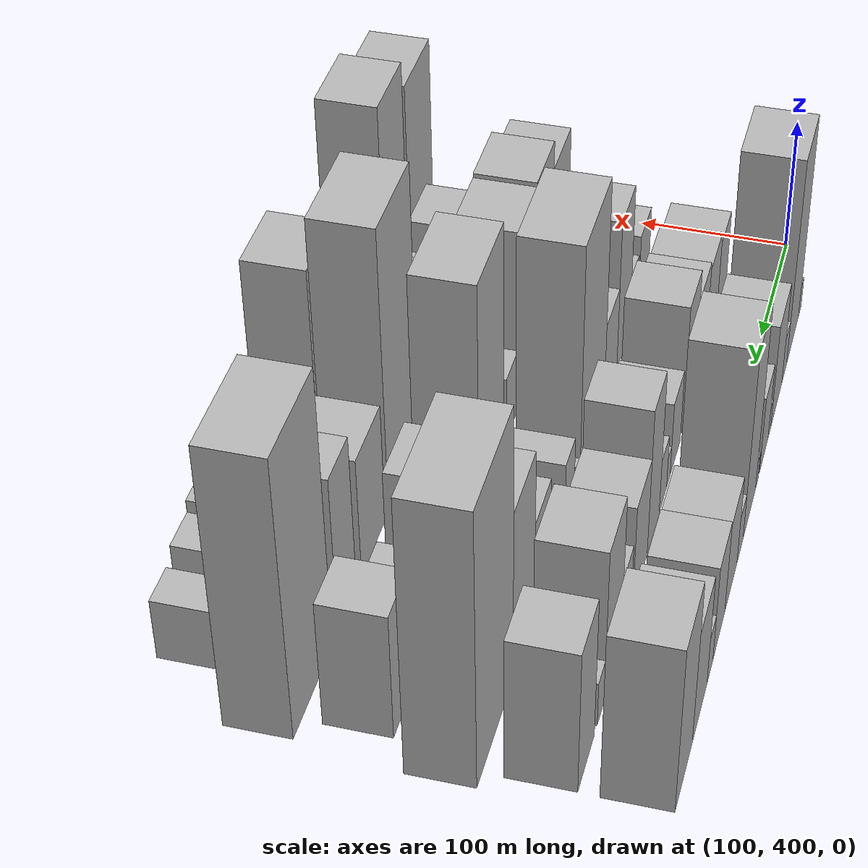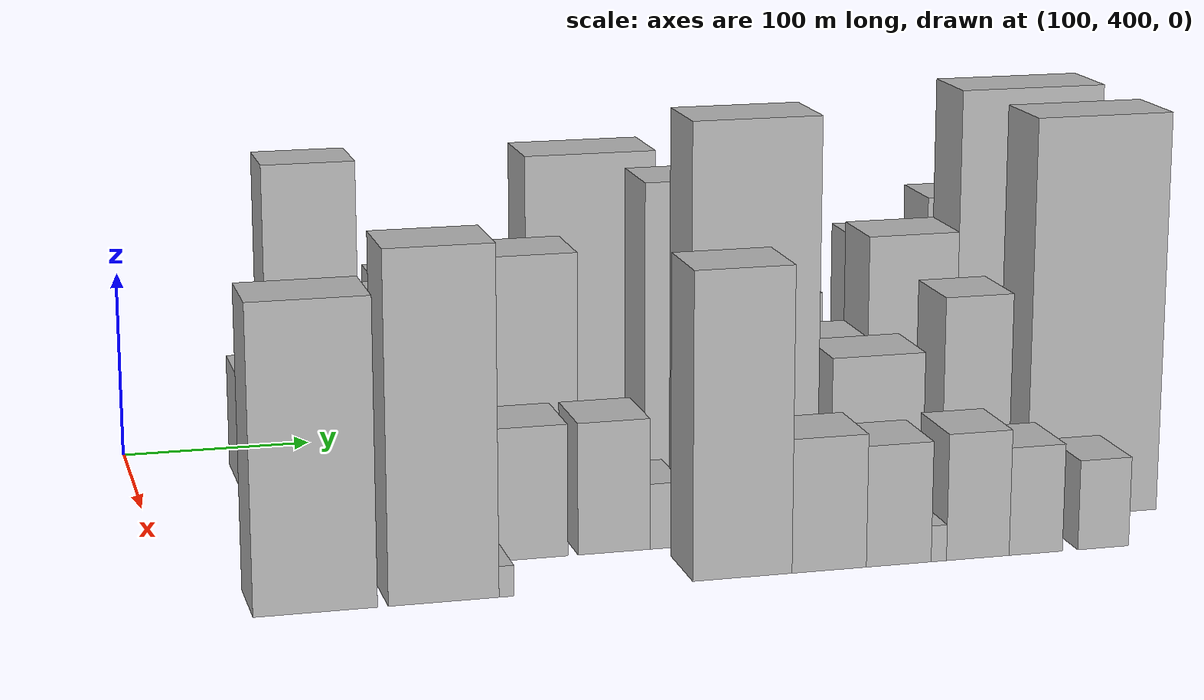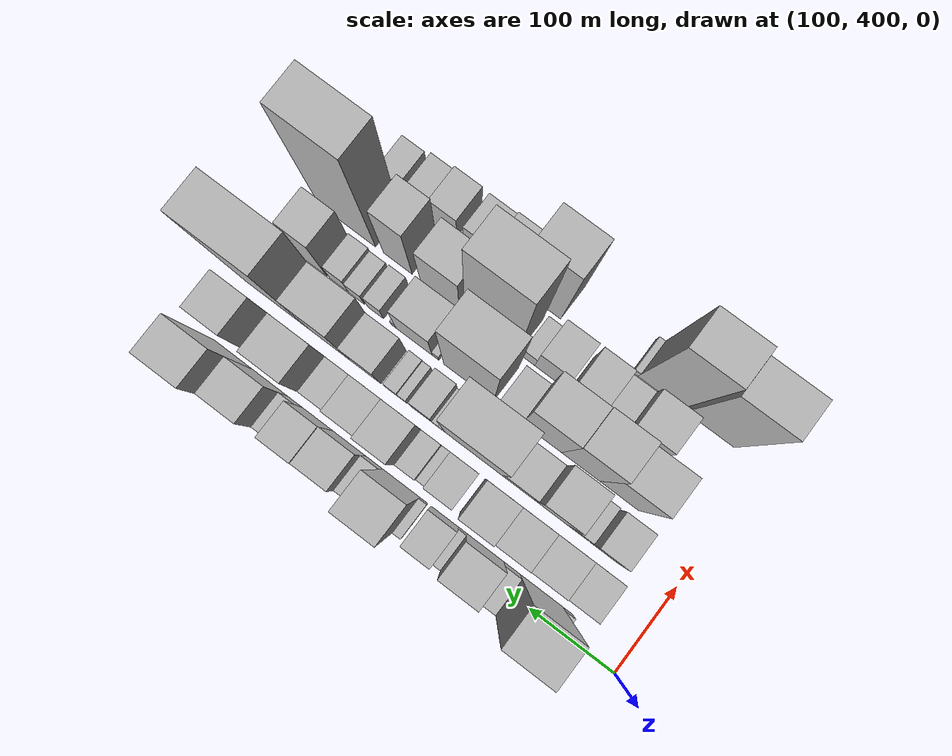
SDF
<sdf version="1.6">
 <world name="default">
  <model name="building_42">
   <static>1</static>
   <pose>100.0000 469.5153 0 0.000000 0.000000 0.000000</pose>
   <link name="link">
    <pose>0 0 12.00 0 0 0</pose>
    <collision name="collision"><geometry><box><size>40.0000 11.7466 24.0000</size></box></geometry></collision>
    <visual name="visual">
     <cast_shadows>0</cast_shadows>
     <geometry><box><size>40.0000 11.7466 24.0000</size></box></geometry>
     <material>
      <script>
       <uri>model://HANNAS_wall/materials/scripts</uri>
       <uri>model://HANNAS_wall/materials/textures</uri>
       <name>vrc/HANNAS_wall</name>
      </script>
     </material>
    </visual>
   </link>
  </model>
  <model name="building_43">
   <static>1</static>
   <pose>100.0000 500.5316 0 0.000000 0.000000 0.000000</pose>
   <link name="link">
    <pose>0 0 79.50 0 0 0</pose>
    <collision name="collision"><geometry><box><size>40.0000 50.2860 159.0000</size></box></geometry></collision>
    <visual name="visual">
     <cast_shadows>0</cast_shadows>
     <geometry><box><size>40.0000 50.2860 159.0000</size></box></geometry>
     <material>
      <script>
       <uri>model://HANNAS_wall/materials/scripts</uri>
       <uri>model://HANNAS_wall/materials/textures</uri>
       <name>vrc/HANNAS_wall</name>
      </script>
     </material>
    </visual>
   </link>
  </model>
  <model name="building_44">
   <static>1</static>
   <pose>100.0000 535.3642 0 0.000000 0.000000 0.000000</pose>
   <link name="link">
    <pose>0 0 18.00 0 0 0</pose>
    <collision name="collision"><geometry><box><size>40.0000 19.3794 36.0000</size></box></geometry></collision>
    <visual name="visual">
     <cast_shadows>0</cast_shadows>
     <geometry><box><size>40.0000 19.3794 36.0000</size></box></geometry>
     <material>
      <script>
       <uri>model://HANNAS_wall/materials/scripts</uri>
       <uri>model://HANNAS_wall/materials/textures</uri>
       <name>vrc/HANNAS_wall</name>
      </script>
     </material>
    </visual>
   </link>
  </model>
  <model name="building_45">
   <static>1</static>
   <pose>100.0000 566.8568 0 0.000000 0.000000 0.000000</pose>
   <link name="link">
    <pose>0 0 40.50 0 0 0</pose>
    <collision name="collision"><geometry><box><size>40.0000 43.6056 81.0000</size></box></geometry></collision>
    <visual name="visual">
     <cast_shadows>0</cast_shadows>
     <geometry><box><size>40.0000 43.6056 81.0000</size></box></geometry>
     <material>
      <script>
       <uri>model://HANNAS_wall/materials/scripts</uri>
       <uri>model://HANNAS_wall/materials/textures</uri>
       <name>vrc/HANNAS_wall</name>
      </script>
     </material>
    </visual>
   </link>
  </model>
  <model name="building_46">
   <static>1</static>
   <pose>100.0000 593.5620 0 0.000000 0.000000 0.000000</pose>
   <link name="link">
    <pose>0 0 12.00 0 0 0</pose>
    <collision name="collision"><geometry><box><size>40.0000 9.8050 24.0000</size></box></geometry></collision>
    <visual name="visual">
     <cast_shadows>0</cast_shadows>
     <geometry><box><size>40.0000 9.8050 24.0000</size></box></geometry>
     <material>
      <script>
       <uri>model://HANNAS_wall/materials/scripts</uri>
       <uri>model://HANNAS_wall/materials/textures</uri>
       <name>vrc/HANNAS_wall</name>
      </script>
     </material>
    </visual>
   </link>
  </model>
  <model name="building_47">
   <static>1</static>
   <pose>100.0000 614.7709 0 0.000000 0.000000 0.000000</pose>
   <link name="link">
    <pose>0 0 30.00 0 0 0</pose>
    <collision name="collision"><geometry><box><size>40.0000 32.6127 60.0000</size></box></geometry></collision>
    <visual name="visual">
     <cast_shadows>0</cast_shadows>
     <geometry><box><size>40.0000 32.6127 60.0000</size></box></geometry>
     <material>
      <script>
       <uri>model://HANNAS_wall/materials/scripts</uri>
       <uri>model://HANNAS_wall/materials/textures</uri>
       <name>vrc/HANNAS_wall</name>
      </script>
     </material>
    </visual>
   </link>
  </model>
  <model name="building_48">
   <static>1</static>
   <pose>100.0000 639.8598 0 0.000000 0.000000 0.000000</pose>
   <link name="link">
    <pose>0 0 10.50 0 0 0</pose>
    <collision name="collision"><geometry><box><size>40.0000 9.5650 21.0000</size></box></geometry></collision>
    <visual name="visual">
     <cast_shadows>0</cast_shadows>
     <geometry><box><size>40.0000 9.5650 21.0000</size></box></geometry>
     <material>
      <script>
       <uri>model://HANNAS_wall/materials/scripts</uri>
       <uri>model://HANNAS_wall/materials/textures</uri>
       <name>vrc/HANNAS_wall</name>
      </script>
     </material>
    </visual>
   </link>
  </model>
  <model name="building_49">
   <static>1</static>
   <pose>100.0000 666.8647 0 0.000000 0.000000 0.000000</pose>
   <link name="link">
    <pose>0 0 72.00 0 0 0</pose>
    <collision name="collision"><geometry><box><size>40.0000 44.4448 144.0000</size></box></geometry></collision>
    <visual name="visual">
     <cast_shadows>0</cast_shadows>
     <geometry><box><size>40.0000 44.4448 144.0000</size></box></geometry>
     <material>
      <script>
       <uri>model://HANNAS_wall/materials/scripts</uri>
       <uri>model://HANNAS_wall/materials/textures</uri>
       <name>vrc/HANNAS_wall</name>
      </script>
     </material>
    </visual>
   </link>
  </model>
  <model name="building_50">
   <static>1</static>
   <pose>100.0000 699.5943 0 0.000000 0.000000 0.000000</pose>
   <link name="link">
    <pose>0 0 18.00 0 0 0</pose>
    <collision name="collision"><geometry><box><size>40.0000 21.0145 36.0000</size></box></geometry></collision>
    <visual name="visual">
     <cast_shadows>0</cast_shadows>
     <geometry><box><size>40.0000 21.0145 36.0000</size></box></geometry>
     <material>
      <script>
       <uri>model://HANNAS_wall/materials/scripts</uri>
       <uri>model://HANNAS_wall/materials/textures</uri>
       <name>vrc/HANNAS_wall</name>
      </script>
     </material>
    </visual>
   </link>
  </model>
  <model name="building_51">
   <static>1</static>
   <pose>100.0000 730.2220 0 0.000000 0.000000 0.000000</pose>
   <link name="link">
    <pose>0 0 34.50 0 0 0</pose>
    <collision name="collision"><geometry><box><size>40.0000 40.2407 69.0000</size></box></geometry></collision>
    <visual name="visual">
     <cast_shadows>0</cast_shadows>
     <geometry><box><size>40.0000 40.2407 69.0000</size></box></geometry>
     <material>
      <script>
       <uri>model://HANNAS_wall/materials/scripts</uri>
       <uri>model://HANNAS_wall/materials/textures</uri>
       <name>vrc/HANNAS_wall</name>
      </script>
     </material>
    </visual>
   </link>
  </model>
  <model name="building_52">
   <static>1</static>
   <pose>100.0000 769.0056 0 0.000000 0.000000 0.000000</pose>
   <link name="link">
    <pose>0 0 36.00 0 0 0</pose>
    <collision name="collision"><geometry><box><size>40.0000 37.3265 72.0000</size></box></geometry></collision>
    <visual name="visual">
     <cast_shadows>0</cast_shadows>
     <geometry><box><size>40.0000 37.3265 72.0000</size></box></geometry>
     <material>
      <script>
       <uri>model://HANNAS_wall/materials/scripts</uri>
       <uri>model://HANNAS_wall/materials/textures</uri>
       <name>vrc/HANNAS_wall</name>
      </script>
     </material>
    </visual>
   </link>
  </model>
  <model name="building_53">
   <static>1</static>
   <pose>100.0000 796.7517 0 0.000000 0.000000 0.000000</pose>
   <link name="link">
    <pose>0 0 18.00 0 0 0</pose>
    <collision name="collision"><geometry><box><size>40.0000 18.1656 36.0000</size></box></geometry></collision>
    <visual name="visual">
     <cast_shadows>0</cast_shadows>
     <geometry><box><size>40.0000 18.1656 36.0000</size></box></geometry>
     <material>
      <script>
       <uri>model://HANNAS_wall/materials/scripts</uri>
       <uri>model://HANNAS_wall/materials/textures</uri>
       <name>vrc/HANNAS_wall</name>
      </script>
     </material>
    </visual>
   </link>
  </model>
  <model name="building_54">
   <static>1</static>
   <pose>100.0000 827.3616 0 0.000000 0.000000 0.000000</pose>
   <link name="link">
    <pose>0 0 42.00 0 0 0</pose>
    <collision name="collision"><geometry><box><size>40.0000 43.0542 84.0000</size></box></geometry></collision>
    <visual name="visual">
     <cast_shadows>0</cast_shadows>
     <geometry><box><size>40.0000 43.0542 84.0000</size></box></geometry>
     <material>
      <script>
       <uri>model://HANNAS_wall/materials/scripts</uri>
       <uri>model://HANNAS_wall/materials/textures</uri>
       <name>vrc/HANNAS_wall</name>
      </script>
     </material>
    </visual>
   </link>
  </model>
  <model name="building_55">
   <static>1</static>
   <pose>100.0000 873.1062 0 0.000000 0.000000 0.000000</pose>
   <link name="link">
    <pose>0 0 61.50 0 0 0</pose>
    <collision name="collision"><geometry><box><size>40.0000 48.4351 123.0000</size></box></geometry></collision>
    <visual name="visual">
     <cast_shadows>0</cast_shadows>
     <geometry><box><size>40.0000 48.4351 123.0000</size></box></geometry>
     <material>
      <script>
       <uri>model://HANNAS_wall/materials/scripts</uri>
       <uri>model://HANNAS_wall/materials/textures</uri>
       <name>vrc/HANNAS_wall</name>
      </script>
     </material>
    </visual>
   </link>
  </model>
  <model name="building_91">
   <static>1</static>
   <pose>152.0000 470.5517 0 0.000000 0.000000 0.000000</pose>
   <link name="link">
    <pose>0 0 30.00 0 0 0</pose>
    <collision name="collision"><geometry><box><size>40.0000 35.4208 60.0000</size></box></geometry></collision>
    <visual name="visual">
     <cast_shadows>0</cast_shadows>
     <geometry><box><size>40.0000 35.4208 60.0000</size></box></geometry>
     <material>
      <script>
       <uri>model://HANNAS_wall/materials/scripts</uri>
       <uri>model://HANNAS_wall/materials/textures</uri>
       <name>vrc/HANNAS_wall</name>
      </script>
     </material>
    </visual>
   </link>
  </model>
  <model name="building_92">
   <static>1</static>
   <pose>152.0000 508.4306 0 0.000000 0.000000 0.000000</pose>
   <link name="link">
    <pose>0 0 34.50 0 0 0</pose>
    <collision name="collision"><geometry><box><size>40.0000 40.3369 69.0000</size></box></geometry></collision>
    <visual name="visual">
     <cast_shadows>0</cast_shadows>
     <geometry><box><size>40.0000 40.3369 69.0000</size></box></geometry>
     <material>
      <script>
       <uri>model://HANNAS_wall/materials/scripts</uri>
       <uri>model://HANNAS_wall/materials/textures</uri>
       <name>vrc/HANNAS_wall</name>
      </script>
     </material>
    </visual>
   </link>
  </model>
  <model name="building_93">
   <static>1</static>
   <pose>152.0000 548.6168 0 0.000000 0.000000 0.000000</pose>
   <link name="link">
    <pose>0 0 37.50 0 0 0</pose>
    <collision name="collision"><geometry><box><size>40.0000 40.0355 75.0000</size></box></geometry></collision>
    <visual name="visual">
     <cast_shadows>0</cast_shadows>
     <geometry><box><size>40.0000 40.0355 75.0000</size></box></geometry>
     <material>
      <script>
       <uri>model://HANNAS_wall/materials/scripts</uri>
       <uri>model://HANNAS_wall/materials/textures</uri>
       <name>vrc/HANNAS_wall</name>
      </script>
     </material>
    </visual>
   </link>
  </model>
  <model name="building_94">
   <static>1</static>
   <pose>152.0000 587.2242 0 0.000000 0.000000 0.000000</pose>
   <link name="link">
    <pose>0 0 49.50 0 0 0</pose>
    <collision name="collision"><geometry><box><size>40.0000 37.1793 99.0000</size></box></geometry></collision>
    <visual name="visual">
     <cast_shadows>0</cast_shadows>
     <geometry><box><size>40.0000 37.1793 99.0000</size></box></geometry>
     <material>
      <script>
       <uri>model://HANNAS_wall/materials/scripts</uri>
       <uri>model://HANNAS_wall/materials/textures</uri>
       <name>vrc/HANNAS_wall</name>
      </script>
     </material>
    </visual>
   </link>
  </model>
  <model name="building_95">
   <static>1</static>
   <pose>152.0000 629.8874 0 0.000000 0.000000 0.000000</pose>
   <link name="link">
    <pose>0 0 28.50 0 0 0</pose>
    <collision name="collision"><geometry><box><size>40.0000 32.1472 57.0000</size></box></geometry></collision>
    <visual name="visual">
     <cast_shadows>0</cast_shadows>
     <geometry><box><size>40.0000 32.1472 57.0000</size></box></geometry>
     <material>
      <script>
       <uri>model://HANNAS_wall/materials/scripts</uri>
       <uri>model://HANNAS_wall/materials/textures</uri>
       <name>vrc/HANNAS_wall</name>
      </script>
     </material>
    </visual>
   </link>
  </model>
  <model name="building_96">
   <static>1</static>
   <pose>152.0000 651.5293 0 0.000000 0.000000 0.000000</pose>
   <link name="link">
    <pose>0 0 12.00 0 0 0</pose>
    <collision name="collision"><geometry><box><size>40.0000 11.1366 24.0000</size></box></geometry></collision>
    <visual name="visual">
     <cast_shadows>0</cast_shadows>
     <geometry><box><size>40.0000 11.1366 24.0000</size></box></geometry>
     <material>
      <script>
       <uri>model://HANNAS_wall/materials/scripts</uri>
       <uri>model://HANNAS_wall/materials/textures</uri>
       <name>vrc/HANNAS_wall</name>
      </script>
     </material>
    </visual>
   </link>
  </model>
  <model name="building_97">
   <static>1</static>
   <pose>152.0000 668.4290 0 0.000000 0.000000 0.000000</pose>
   <link name="link">
    <pose>0 0 21.00 0 0 0</pose>
    <collision name="collision"><geometry><box><size>40.0000 22.6628 42.0000</size></box></geometry></collision>
    <visual name="visual">
     <cast_shadows>0</cast_shadows>
     <geometry><box><size>40.0000 22.6628 42.0000</size></box></geometry>
     <material>
      <script>
       <uri>model://HANNAS_wall/materials/scripts</uri>
       <uri>model://HANNAS_wall/materials/textures</uri>
       <name>vrc/HANNAS_wall</name>
      </script>
     </material>
    </visual>
   </link>
  </model>
  <model name="building_98">
   <static>1</static>
   <pose>152.0000 697.4632 0 0.000000 0.000000 0.000000</pose>
   <link name="link">
    <pose>0 0 55.50 0 0 0</pose>
    <collision name="collision"><geometry><box><size>40.0000 35.4056 111.0000</size></box></geometry></collision>
    <visual name="visual">
     <cast_shadows>0</cast_shadows>
     <geometry><box><size>40.0000 35.4056 111.0000</size></box></geometry>
     <material>
      <script>
       <uri>model://HANNAS_wall/materials/scripts</uri>
       <uri>model://HANNAS_wall/materials/textures</uri>
       <name>vrc/HANNAS_wall</name>
      </script>
     </material>
    </visual>
   </link>
  </model>
  <model name="building_99">
   <static>1</static>
   <pose>152.0000 735.6803 0 0.000000 0.000000 0.000000</pose>
   <link name="link">
    <pose>0 0 37.50 0 0 0</pose>
    <collision name="collision"><geometry><box><size>40.0000 41.0287 75.0000</size></box></geometry></collision>
    <visual name="visual">
     <cast_shadows>0</cast_shadows>
     <geometry><box><size>40.0000 41.0287 75.0000</size></box></geometry>
     <material>
      <script>
       <uri>model://HANNAS_wall/materials/scripts</uri>
       <uri>model://HANNAS_wall/materials/textures</uri>
       <name>vrc/HANNAS_wall</name>
      </script>
     </material>
    </visual>
   </link>
  </model>
  <model name="building_100">
   <static>1</static>
   <pose>152.0000 774.8406 0 0.000000 0.000000 0.000000</pose>
   <link name="link">
    <pose>0 0 25.50 0 0 0</pose>
    <collision name="collision"><geometry><box><size>40.0000 27.2918 51.0000</size></box></geometry></collision>
    <visual name="visual">
     <cast_shadows>0</cast_shadows>
     <geometry><box><size>40.0000 27.2918 51.0000</size></box></geometry>
     <material>
      <script>
       <uri>model://HANNAS_wall/materials/scripts</uri>
       <uri>model://HANNAS_wall/materials/textures</uri>
       <name>vrc/HANNAS_wall</name>
      </script>
     </material>
    </visual>
   </link>
  </model>
  <model name="building_101">
   <static>1</static>
   <pose>152.0000 810.3307 0 0.000000 0.000000 0.000000</pose>
   <link name="link">
    <pose>0 0 57.00 0 0 0</pose>
    <collision name="collision"><geometry><box><size>40.0000 43.6885 114.0000</size></box></geometry></collision>
    <visual name="visual">
     <cast_shadows>0</cast_shadows>
     <geometry><box><size>40.0000 43.6885 114.0000</size></box></geometry>
     <material>
      <script>
       <uri>model://HANNAS_wall/materials/scripts</uri>
       <uri>model://HANNAS_wall/materials/textures</uri>
       <name>vrc/HANNAS_wall</name>
      </script>
     </material>
    </visual>
   </link>
  </model>
  <model name="building_102">
   <static>1</static>
   <pose>152.0000 840.9289 0 0.000000 0.000000 0.000000</pose>
   <link name="link">
    <pose>0 0 16.50 0 0 0</pose>
    <collision name="collision"><geometry><box><size>40.0000 17.5078 33.0000</size></box></geometry></collision>
    <visual name="visual">
     <cast_shadows>0</cast_shadows>
     <geometry><box><size>40.0000 17.5078 33.0000</size></box></geometry>
     <material>
      <script>
       <uri>model://HANNAS_wall/materials/scripts</uri>
       <uri>model://HANNAS_wall/materials/textures</uri>
       <name>vrc/HANNAS_wall</name>
      </script>
     </material>
    </visual>
   </link>
  </model>
  <model name="building_103">
   <static>1</static>
   <pose>152.0000 876.7157 0 0.000000 0.000000 0.000000</pose>
   <link name="link">
    <pose>0 0 52.50 0 0 0</pose>
    <collision name="collision"><geometry><box><size>40.0000 40.0659 105.0000</size></box></geometry></collision>
    <visual name="visual">
     <cast_shadows>0</cast_shadows>
     <geometry><box><size>40.0000 40.0659 105.0000</size></box></geometry>
     <material>
      <script>
       <uri>model://HANNAS_wall/materials/scripts</uri>
       <uri>model://HANNAS_wall/materials/textures</uri>
       <name>vrc/HANNAS_wall</name>
      </script>
     </material>
    </visual>
   </link>
  </model>
  <model name="building_134">
   <static>1</static>
   <pose>204.0000 473.5077 0 0.000000 0.000000 0.000000</pose>
   <link name="link">
    <pose>0 0 28.50 0 0 0</pose>
    <collision name="collision"><geometry><box><size>40.0000 33.0088 57.0000</size></box></geometry></collision>
    <visual name="visual">
     <cast_shadows>0</cast_shadows>
     <geometry><box><size>40.0000 33.0088 57.0000</size></box></geometry>
     <material>
      <script>
       <uri>model://HANNAS_wall/materials/scripts</uri>
       <uri>model://HANNAS_wall/materials/textures</uri>
       <name>vrc/HANNAS_wall</name>
      </script>
     </material>
    </visual>
   </link>
  </model>
  <model name="building_135">
   <static>1</static>
   <pose>204.0000 505.9671 0 0.000000 0.000000 0.000000</pose>
   <link name="link">
    <pose>0 0 22.50 0 0 0</pose>
    <collision name="collision"><geometry><box><size>40.0000 23.9101 45.0000</size></box></geometry></collision>
    <visual name="visual">
     <cast_shadows>0</cast_shadows>
     <geometry><box><size>40.0000 23.9101 45.0000</size></box></geometry>
     <material>
      <script>
       <uri>model://HANNAS_wall/materials/scripts</uri>
       <uri>model://HANNAS_wall/materials/textures</uri>
       <name>vrc/HANNAS_wall</name>
      </script>
     </material>
    </visual>
   </link>
  </model>
  <model name="building_136">
   <static>1</static>
   <pose>204.0000 537.6601 0 0.000000 0.000000 0.000000</pose>
   <link name="link">
    <pose>0 0 58.50 0 0 0</pose>
    <collision name="collision"><geometry><box><size>40.0000 39.4757 117.0000</size></box></geometry></collision>
    <visual name="visual">
     <cast_shadows>0</cast_shadows>
     <geometry><box><size>40.0000 39.4757 117.0000</size></box></geometry>
     <material>
      <script>
       <uri>model://HANNAS_wall/materials/scripts</uri>
       <uri>model://HANNAS_wall/materials/textures</uri>
       <name>vrc/HANNAS_wall</name>
      </script>
     </material>
    </visual>
   </link>
  </model>
  <model name="building_137">
   <static>1</static>
   <pose>204.0000 576.3016 0 0.000000 0.000000 0.000000</pose>
   <link name="link">
    <pose>0 0 33.00 0 0 0</pose>
    <collision name="collision"><geometry><box><size>40.0000 37.8074 66.0000</size></box></geometry></collision>
    <visual name="visual">
     <cast_shadows>0</cast_shadows>
     <geometry><box><size>40.0000 37.8074 66.0000</size></box></geometry>
     <material>
      <script>
       <uri>model://HANNAS_wall/materials/scripts</uri>
       <uri>model://HANNAS_wall/materials/textures</uri>
       <name>vrc/HANNAS_wall</name>
      </script>
     </material>
    </visual>
   </link>
  </model>
  <model name="building_138">
   <static>1</static>
   <pose>204.0000 629.2021 0 0.000000 0.000000 0.000000</pose>
   <link name="link">
    <pose>0 0 88.50 0 0 0</pose>
    <collision name="collision"><geometry><box><size>40.0000 67.9936 177.0000</size></box></geometry></collision>
    <visual name="visual">
     <cast_shadows>0</cast_shadows>
     <geometry><box><size>40.0000 67.9936 177.0000</size></box></geometry>
     <material>
      <script>
       <uri>model://HANNAS_wall/materials/scripts</uri>
       <uri>model://HANNAS_wall/materials/textures</uri>
       <name>vrc/HANNAS_wall</name>
      </script>
     </material>
    </visual>
   </link>
  </model>
  <model name="building_139">
   <static>1</static>
   <pose>204.0000 667.3887 0 0.000000 0.000000 0.000000</pose>
   <link name="link">
    <pose>0 0 9.00 0 0 0</pose>
    <collision name="collision"><geometry><box><size>40.0000 8.3796 18.0000</size></box></geometry></collision>
    <visual name="visual">
     <cast_shadows>0</cast_shadows>
     <geometry><box><size>40.0000 8.3796 18.0000</size></box></geometry>
     <material>
      <script>
       <uri>model://HANNAS_wall/materials/scripts</uri>
       <uri>model://HANNAS_wall/materials/textures</uri>
       <name>vrc/HANNAS_wall</name>
      </script>
     </material>
    </visual>
   </link>
  </model>
  <model name="building_140">
   <static>1</static>
   <pose>204.0000 675.2056 0 0.000000 0.000000 0.000000</pose>
   <link name="link">
    <pose>0 0 7.50 0 0 0</pose>
    <collision name="collision"><geometry><box><size>40.0000 7.2541 15.0000</size></box></geometry></collision>
    <visual name="visual">
     <cast_shadows>0</cast_shadows>
     <geometry><box><size>40.0000 7.2541 15.0000</size></box></geometry>
     <material>
      <script>
       <uri>model://HANNAS_wall/materials/scripts</uri>
       <uri>model://HANNAS_wall/materials/textures</uri>
       <name>vrc/HANNAS_wall</name>
      </script>
     </material>
    </visual>
   </link>
  </model>
  <model name="building_141">
   <static>1</static>
   <pose>204.0000 691.1232 0 0.000000 0.000000 0.000000</pose>
   <link name="link">
    <pose>0 0 24.00 0 0 0</pose>
    <collision name="collision"><geometry><box><size>40.0000 24.5810 48.0000</size></box></geometry></collision>
    <visual name="visual">
     <cast_shadows>0</cast_shadows>
     <geometry><box><size>40.0000 24.5810 48.0000</size></box></geometry>
     <material>
      <script>
       <uri>model://HANNAS_wall/materials/scripts</uri>
       <uri>model://HANNAS_wall/materials/textures</uri>
       <name>vrc/HANNAS_wall</name>
      </script>
     </material>
    </visual>
   </link>
  </model>
  <model name="building_142">
   <static>1</static>
   <pose>204.0000 714.4471 0 0.000000 0.000000 0.000000</pose>
   <link name="link">
    <pose>0 0 12.00 0 0 0</pose>
    <collision name="collision"><geometry><box><size>40.0000 10.0668 24.0000</size></box></geometry></collision>
    <visual name="visual">
     <cast_shadows>0</cast_shadows>
     <geometry><box><size>40.0000 10.0668 24.0000</size></box></geometry>
     <material>
      <script>
       <uri>model://HANNAS_wall/materials/scripts</uri>
       <uri>model://HANNAS_wall/materials/textures</uri>
       <name>vrc/HANNAS_wall</name>
      </script>
     </material>
    </visual>
   </link>
  </model>
  <model name="building_143">
   <static>1</static>
   <pose>204.0000 727.2697 0 0.000000 0.000000 0.000000</pose>
   <link name="link">
    <pose>0 0 15.00 0 0 0</pose>
    <collision name="collision"><geometry><box><size>40.0000 15.5784 30.0000</size></box></geometry></collision>
    <visual name="visual">
     <cast_shadows>0</cast_shadows>
     <geometry><box><size>40.0000 15.5784 30.0000</size></box></geometry>
     <material>
      <script>
       <uri>model://HANNAS_wall/materials/scripts</uri>
       <uri>model://HANNAS_wall/materials/textures</uri>
       <name>vrc/HANNAS_wall</name>
      </script>
     </material>
    </visual>
   </link>
  </model>
  <model name="building_144">
   <static>1</static>
   <pose>204.0000 760.0001 0 0.000000 0.000000 0.000000</pose>
   <link name="link">
    <pose>0 0 36.00 0 0 0</pose>
    <collision name="collision"><geometry><box><size>40.0000 37.8822 72.0000</size></box></geometry></collision>
    <visual name="visual">
     <cast_shadows>0</cast_shadows>
     <geometry><box><size>40.0000 37.8822 72.0000</size></box></geometry>
     <material>
      <script>
       <uri>model://HANNAS_wall/materials/scripts</uri>
       <uri>model://HANNAS_wall/materials/textures</uri>
       <name>vrc/HANNAS_wall</name>
      </script>
     </material>
    </visual>
   </link>
  </model>
  <model name="building_145">
   <static>1</static>
   <pose>204.0000 803.6945 0 0.000000 0.000000 0.000000</pose>
   <link name="link">
    <pose>0 0 63.00 0 0 0</pose>
    <collision name="collision"><geometry><box><size>40.0000 49.5068 126.0000</size></box></geometry></collision>
    <visual name="visual">
     <cast_shadows>0</cast_shadows>
     <geometry><box><size>40.0000 49.5068 126.0000</size></box></geometry>
     <material>
      <script>
       <uri>model://HANNAS_wall/materials/scripts</uri>
       <uri>model://HANNAS_wall/materials/textures</uri>
       <name>vrc/HANNAS_wall</name>
      </script>
     </material>
    </visual>
   </link>
  </model>
  <model name="building_146">
   <static>1</static>
   <pose>204.0000 867.8003 0 0.000000 0.000000 0.000000</pose>
   <link name="link">
    <pose>0 0 100.50 0 0 0</pose>
    <collision name="collision"><geometry><box><size>40.0000 78.7048 201.0000</size></box></geometry></collision>
    <visual name="visual">
     <cast_shadows>0</cast_shadows>
     <geometry><box><size>40.0000 78.7048 201.0000</size></box></geometry>
     <material>
      <script>
       <uri>model://HANNAS_wall/materials/scripts</uri>
       <uri>model://HANNAS_wall/materials/textures</uri>
       <name>vrc/HANNAS_wall</name>
      </script>
     </material>
    </visual>
   </link>
  </model>
  <model name="building_182">
   <static>1</static>
   <pose>256.0000 494.1224 0 0.000000 0.000000 0.000000</pose>
   <link name="link">
    <pose>0 0 60.00 0 0 0</pose>
    <collision name="collision"><geometry><box><size>40.0000 46.2277 120.0000</size></box></geometry></collision>
    <visual name="visual">
     <cast_shadows>0</cast_shadows>
     <geometry><box><size>40.0000 46.2277 120.0000</size></box></geometry>
     <material>
      <script>
       <uri>model://HANNAS_wall/materials/scripts</uri>
       <uri>model://HANNAS_wall/materials/textures</uri>
       <name>vrc/HANNAS_wall</name>
      </script>
     </material>
    </visual>
   </link>
  </model>
  <model name="building_183">
   <static>1</static>
   <pose>256.0000 539.9245 0 0.000000 0.000000 0.000000</pose>
   <link name="link">
    <pose>0 0 70.50 0 0 0</pose>
    <collision name="collision"><geometry><box><size>40.0000 45.3764 141.0000</size></box></geometry></collision>
    <visual name="visual">
     <cast_shadows>0</cast_shadows>
     <geometry><box><size>40.0000 45.3764 141.0000</size></box></geometry>
     <material>
      <script>
       <uri>model://HANNAS_wall/materials/scripts</uri>
       <uri>model://HANNAS_wall/materials/textures</uri>
       <name>vrc/HANNAS_wall</name>
      </script>
     </material>
    </visual>
   </link>
  </model>
  <model name="building_184">
   <static>1</static>
   <pose>256.0000 586.2225 0 0.000000 0.000000 0.000000</pose>
   <link name="link">
    <pose>0 0 69.00 0 0 0</pose>
    <collision name="collision"><geometry><box><size>40.0000 47.2197 138.0000</size></box></geometry></collision>
    <visual name="visual">
     <cast_shadows>0</cast_shadows>
     <geometry><box><size>40.0000 47.2197 138.0000</size></box></geometry>
     <material>
      <script>
       <uri>model://HANNAS_wall/materials/scripts</uri>
       <uri>model://HANNAS_wall/materials/textures</uri>
       <name>vrc/HANNAS_wall</name>
      </script>
     </material>
    </visual>
   </link>
  </model>
  <model name="building_185">
   <static>1</static>
   <pose>256.0000 624.0581 0 0.000000 0.000000 0.000000</pose>
   <link name="link">
    <pose>0 0 24.00 0 0 0</pose>
    <collision name="collision"><geometry><box><size>40.0000 28.4514 48.0000</size></box></geometry></collision>
    <visual name="visual">
     <cast_shadows>0</cast_shadows>
     <geometry><box><size>40.0000 28.4514 48.0000</size></box></geometry>
     <material>
      <script>
       <uri>model://HANNAS_wall/materials/scripts</uri>
       <uri>model://HANNAS_wall/materials/textures</uri>
       <name>vrc/HANNAS_wall</name>
      </script>
     </material>
    </visual>
   </link>
  </model>
  <model name="building_186">
   <static>1</static>
   <pose>256.0000 674.3601 0 0.000000 0.000000 0.000000</pose>
   <link name="link">
    <pose>0 0 85.50 0 0 0</pose>
    <collision name="collision"><geometry><box><size>40.0000 60.1526 171.0000</size></box></geometry></collision>
    <visual name="visual">
     <cast_shadows>0</cast_shadows>
     <geometry><box><size>40.0000 60.1526 171.0000</size></box></geometry>
     <material>
      <script>
       <uri>model://HANNAS_wall/materials/scripts</uri>
       <uri>model://HANNAS_wall/materials/textures</uri>
       <name>vrc/HANNAS_wall</name>
      </script>
     </material>
    </visual>
   </link>
  </model>
  <model name="building_187">
   <static>1</static>
   <pose>256.0000 714.5780 0 0.000000 0.000000 0.000000</pose>
   <link name="link">
    <pose>0 0 9.00 0 0 0</pose>
    <collision name="collision"><geometry><box><size>40.0000 8.2830 18.0000</size></box></geometry></collision>
    <visual name="visual">
     <cast_shadows>0</cast_shadows>
     <geometry><box><size>40.0000 8.2830 18.0000</size></box></geometry>
     <material>
      <script>
       <uri>model://HANNAS_wall/materials/scripts</uri>
       <uri>model://HANNAS_wall/materials/textures</uri>
       <name>vrc/HANNAS_wall</name>
      </script>
     </material>
    </visual>
   </link>
  </model>
  <model name="building_188">
   <static>1</static>
   <pose>256.0000 740.8505 0 0.000000 0.000000 0.000000</pose>
   <link name="link">
    <pose>0 0 37.50 0 0 0</pose>
    <collision name="collision"><geometry><box><size>40.0000 44.2621 75.0000</size></box></geometry></collision>
    <visual name="visual">
     <cast_shadows>0</cast_shadows>
     <geometry><box><size>40.0000 44.2621 75.0000</size></box></geometry>
     <material>
      <script>
       <uri>model://HANNAS_wall/materials/scripts</uri>
       <uri>model://HANNAS_wall/materials/textures</uri>
       <name>vrc/HANNAS_wall</name>
      </script>
     </material>
    </visual>
   </link>
  </model>
  <model name="building_189">
   <static>1</static>
   <pose>256.0000 766.1164 0 0.000000 0.000000 0.000000</pose>
   <link name="link">
    <pose>0 0 7.50 0 0 0</pose>
    <collision name="collision"><geometry><box><size>40.0000 6.2696 15.0000</size></box></geometry></collision>
    <visual name="visual">
     <cast_shadows>0</cast_shadows>
     <geometry><box><size>40.0000 6.2696 15.0000</size></box></geometry>
     <material>
      <script>
       <uri>model://HANNAS_wall/materials/scripts</uri>
       <uri>model://HANNAS_wall/materials/textures</uri>
       <name>vrc/HANNAS_wall</name>
      </script>
     </material>
    </visual>
   </link>
  </model>
  <model name="building_190">
   <static>1</static>
   <pose>256.0000 788.1389 0 0.000000 0.000000 0.000000</pose>
   <link name="link">
    <pose>0 0 18.00 0 0 0</pose>
    <collision name="collision"><geometry><box><size>40.0000 19.7753 36.0000</size></box></geometry></collision>
    <visual name="visual">
     <cast_shadows>0</cast_shadows>
     <geometry><box><size>40.0000 19.7753 36.0000</size></box></geometry>
     <material>
      <script>
       <uri>model://HANNAS_wall/materials/scripts</uri>
       <uri>model://HANNAS_wall/materials/textures</uri>
       <name>vrc/HANNAS_wall</name>
      </script>
     </material>
    </visual>
   </link>
  </model>
  <model name="building_191">
   <static>1</static>
   <pose>256.0000 811.6719 0 0.000000 0.000000 0.000000</pose>
   <link name="link">
    <pose>0 0 16.50 0 0 0</pose>
    <collision name="collision"><geometry><box><size>40.0000 19.2908 33.0000</size></box></geometry></collision>
    <visual name="visual">
     <cast_shadows>0</cast_shadows>
     <geometry><box><size>40.0000 19.2908 33.0000</size></box></geometry>
     <material>
      <script>
       <uri>model://HANNAS_wall/materials/scripts</uri>
       <uri>model://HANNAS_wall/materials/textures</uri>
       <name>vrc/HANNAS_wall</name>
      </script>
     </material>
    </visual>
   </link>
  </model>
  <model name="building_192">
   <static>1</static>
   <pose>256.0000 832.9151 0 0.000000 0.000000 0.000000</pose>
   <link name="link">
    <pose>0 0 21.00 0 0 0</pose>
    <collision name="collision"><geometry><box><size>40.0000 23.1956 42.0000</size></box></geometry></collision>
    <visual name="visual">
     <cast_shadows>0</cast_shadows>
     <geometry><box><size>40.0000 23.1956 42.0000</size></box></geometry>
     <material>
      <script>
       <uri>model://HANNAS_wall/materials/scripts</uri>
       <uri>model://HANNAS_wall/materials/textures</uri>
       <name>vrc/HANNAS_wall</name>
      </script>
     </material>
    </visual>
   </link>
  </model>
  <model name="building_193">
   <static>1</static>
   <pose>256.0000 866.7601 0 0.000000 0.000000 0.000000</pose>
   <link name="link">
    <pose>0 0 46.50 0 0 0</pose>
    <collision name="collision"><geometry><box><size>40.0000 36.4946 93.0000</size></box></geometry></collision>
    <visual name="visual">
     <cast_shadows>0</cast_shadows>
     <geometry><box><size>40.0000 36.4946 93.0000</size></box></geometry>
     <material>
      <script>
       <uri>model://HANNAS_wall/materials/scripts</uri>
       <uri>model://HANNAS_wall/materials/textures</uri>
       <name>vrc/HANNAS_wall</name>
      </script>
     </material>
    </visual>
   </link>
  </model>
  <model name="building_233">
   <static>1</static>
   <pose>308.0000 509.0145 0 0.000000 0.000000 0.000000</pose>
   <link name="link">
    <pose>0 0 36.00 0 0 0</pose>
    <collision name="collision"><geometry><box><size>40.0000 42.0043 72.0000</size></box></geometry></collision>
    <visual name="visual">
     <cast_shadows>0</cast_shadows>
     <geometry><box><size>40.0000 42.0043 72.0000</size></box></geometry>
     <material>
      <script>
       <uri>model://HANNAS_wall/materials/scripts</uri>
       <uri>model://HANNAS_wall/materials/textures</uri>
       <name>vrc/HANNAS_wall</name>
      </script>
     </material>
    </visual>
   </link>
  </model>
  <model name="building_234">
   <static>1</static>
   <pose>308.0000 543.8086 0 0.000000 0.000000 0.000000</pose>
   <link name="link">
    <pose>0 0 24.00 0 0 0</pose>
    <collision name="collision"><geometry><box><size>40.0000 27.5839 48.0000</size></box></geometry></collision>
    <visual name="visual">
     <cast_shadows>0</cast_shadows>
     <geometry><box><size>40.0000 27.5839 48.0000</size></box></geometry>
     <material>
      <script>
       <uri>model://HANNAS_wall/materials/scripts</uri>
       <uri>model://HANNAS_wall/materials/textures</uri>
       <name>vrc/HANNAS_wall</name>
      </script>
     </material>
    </visual>
   </link>
  </model>
  <model name="building_235">
   <static>1</static>
   <pose>308.0000 574.9923 0 0.000000 0.000000 0.000000</pose>
   <link name="link">
    <pose>0 0 33.00 0 0 0</pose>
    <collision name="collision"><geometry><box><size>40.0000 34.7835 66.0000</size></box></geometry></collision>
    <visual name="visual">
     <cast_shadows>0</cast_shadows>
     <geometry><box><size>40.0000 34.7835 66.0000</size></box></geometry>
     <material>
      <script>
       <uri>model://HANNAS_wall/materials/scripts</uri>
       <uri>model://HANNAS_wall/materials/textures</uri>
       <name>vrc/HANNAS_wall</name>
      </script>
     </material>
    </visual>
   </link>
  </model>
  <model name="building_236">
   <static>1</static>
   <pose>308.0000 615.3509 0 0.000000 0.000000 0.000000</pose>
   <link name="link">
    <pose>0 0 33.00 0 0 0</pose>
    <collision name="collision"><geometry><box><size>40.0000 35.9336 66.0000</size></box></geometry></collision>
    <visual name="visual">
     <cast_shadows>0</cast_shadows>
     <geometry><box><size>40.0000 35.9336 66.0000</size></box></geometry>
     <material>
      <script>
       <uri>model://HANNAS_wall/materials/scripts</uri>
       <uri>model://HANNAS_wall/materials/textures</uri>
       <name>vrc/HANNAS_wall</name>
      </script>
     </material>
    </visual>
   </link>
  </model>
  <model name="building_237">
   <static>1</static>
   <pose>308.0000 641.5720 0 0.000000 0.000000 0.000000</pose>
   <link name="link">
    <pose>0 0 16.50 0 0 0</pose>
    <collision name="collision"><geometry><box><size>40.0000 16.5086 33.0000</size></box></geometry></collision>
    <visual name="visual">
     <cast_shadows>0</cast_shadows>
     <geometry><box><size>40.0000 16.5086 33.0000</size></box></geometry>
     <material>
      <script>
       <uri>model://HANNAS_wall/materials/scripts</uri>
       <uri>model://HANNAS_wall/materials/textures</uri>
       <name>vrc/HANNAS_wall</name>
      </script>
     </material>
    </visual>
   </link>
  </model>
  <model name="building_238">
   <static>1</static>
   <pose>308.0000 686.1065 0 0.000000 0.000000 0.000000</pose>
   <link name="link">
    <pose>0 0 105.00 0 0 0</pose>
    <collision name="collision"><geometry><box><size>40.0000 64.5606 210.0000</size></box></geometry></collision>
    <visual name="visual">
     <cast_shadows>0</cast_shadows>
     <geometry><box><size>40.0000 64.5606 210.0000</size></box></geometry>
     <material>
      <script>
       <uri>model://HANNAS_wall/materials/scripts</uri>
       <uri>model://HANNAS_wall/materials/textures</uri>
       <name>vrc/HANNAS_wall</name>
      </script>
     </material>
    </visual>
   </link>
  </model>
  <model name="building_239">
   <static>1</static>
   <pose>308.0000 749.2752 0 0.000000 0.000000 0.000000</pose>
   <link name="link">
    <pose>0 0 45.00 0 0 0</pose>
    <collision name="collision"><geometry><box><size>40.0000 47.7768 90.0000</size></box></geometry></collision>
    <visual name="visual">
     <cast_shadows>0</cast_shadows>
     <geometry><box><size>40.0000 47.7768 90.0000</size></box></geometry>
     <material>
      <script>
       <uri>model://HANNAS_wall/materials/scripts</uri>
       <uri>model://HANNAS_wall/materials/textures</uri>
       <name>vrc/HANNAS_wall</name>
      </script>
     </material>
    </visual>
   </link>
  </model>
  <model name="building_240">
   <static>1</static>
   <pose>308.0000 800.8607 0 0.000000 0.000000 0.000000</pose>
   <link name="link">
    <pose>0 0 58.50 0 0 0</pose>
    <collision name="collision"><geometry><box><size>40.0000 35.3941 117.0000</size></box></geometry></collision>
    <visual name="visual">
     <cast_shadows>0</cast_shadows>
     <geometry><box><size>40.0000 35.3941 117.0000</size></box></geometry>
     <material>
      <script>
       <uri>model://HANNAS_wall/materials/scripts</uri>
       <uri>model://HANNAS_wall/materials/textures</uri>
       <name>vrc/HANNAS_wall</name>
      </script>
     </material>
    </visual>
   </link>
  </model>
  <model name="building_241">
   <static>1</static>
   <pose>308.0000 863.8108 0 0.000000 0.000000 0.000000</pose>
   <link name="link">
    <pose>0 0 102.00 0 0 0</pose>
    <collision name="collision"><geometry><box><size>40.0000 70.5060 204.0000</size></box></geometry></collision>
    <visual name="visual">
     <cast_shadows>0</cast_shadows>
     <geometry><box><size>40.0000 70.5060 204.0000</size></box></geometry>
     <material>
      <script>
       <uri>model://HANNAS_wall/materials/scripts</uri>
       <uri>model://HANNAS_wall/materials/textures</uri>
       <name>vrc/HANNAS_wall</name>
      </script>
     </material>
    </visual>
   </link>
  </model>
  <model name="building_275">
   <static>1</static>
   <pose>360.0000 461.7610 0 0.000000 0.000000 0.000000</pose>
   <link name="link">
    <pose>0 0 73.50 0 0 0</pose>
    <collision name="collision"><geometry><box><size>40.0000 57.3182 147.0000</size></box></geometry></collision>
    <visual name="visual">
     <cast_shadows>0</cast_shadows>
     <geometry><box><size>40.0000 57.3182 147.0000</size></box></geometry>
     <material>
      <script>
       <uri>model://HANNAS_wall/materials/scripts</uri>
       <uri>model://HANNAS_wall/materials/textures</uri>
       <name>vrc/HANNAS_wall</name>
      </script>
     </material>
    </visual>
   </link>
  </model>
  <model name="building_276">
   <static>1</static>
   <pose>360.0000 521.4086 0 0.000000 0.000000 0.000000</pose>
   <link name="link">
    <pose>0 0 84.00 0 0 0</pose>
    <collision name="collision"><geometry><box><size>40.0000 51.9769 168.0000</size></box></geometry></collision>
    <visual name="visual">
     <cast_shadows>0</cast_shadows>
     <geometry><box><size>40.0000 51.9769 168.0000</size></box></geometry>
     <material>
      <script>
       <uri>model://HANNAS_wall/materials/scripts</uri>
       <uri>model://HANNAS_wall/materials/textures</uri>
       <name>vrc/HANNAS_wall</name>
      </script>
     </material>
    </visual>
   </link>
  </model>
  <model name="building_277">
   <static>1</static>
   <pose>360.0000 550.9617 0 0.000000 0.000000 0.000000</pose>
   <link name="link">
    <pose>0 0 7.50 0 0 0</pose>
    <collision name="collision"><geometry><box><size>40.0000 7.1292 15.0000</size></box></geometry></collision>
    <visual name="visual">
     <cast_shadows>0</cast_shadows>
     <geometry><box><size>40.0000 7.1292 15.0000</size></box></geometry>
     <material>
      <script>
       <uri>model://HANNAS_wall/materials/scripts</uri>
       <uri>model://HANNAS_wall/materials/textures</uri>
       <name>vrc/HANNAS_wall</name>
      </script>
     </material>
    </visual>
   </link>
  </model>
  <model name="building_278">
   <static>1</static>
   <pose>360.0000 664.9769 0 0.000000 0.000000 0.000000</pose>
   <link name="link">
    <pose>0 0 75.00 0 0 0</pose>
    <collision name="collision"><geometry><box><size>40.0000 48.9671 150.0000</size></box></geometry></collision>
    <visual name="visual">
     <cast_shadows>0</cast_shadows>
     <geometry><box><size>40.0000 48.9671 150.0000</size></box></geometry>
     <material>
      <script>
       <uri>model://HANNAS_wall/materials/scripts</uri>
       <uri>model://HANNAS_wall/materials/textures</uri>
       <name>vrc/HANNAS_wall</name>
      </script>
     </material>
    </visual>
   </link>
  </model>
  <model name="building_279">
   <static>1</static>
   <pose>360.0000 708.0223 0 0.000000 0.000000 0.000000</pose>
   <link name="link">
    <pose>0 0 33.00 0 0 0</pose>
    <collision name="collision"><geometry><box><size>40.0000 37.1238 66.0000</size></box></geometry></collision>
    <visual name="visual">
     <cast_shadows>0</cast_shadows>
     <geometry><box><size>40.0000 37.1238 66.0000</size></box></geometry>
     <material>
      <script>
       <uri>model://HANNAS_wall/materials/scripts</uri>
       <uri>model://HANNAS_wall/materials/textures</uri>
       <name>vrc/HANNAS_wall</name>
      </script>
     </material>
    </visual>
   </link>
  </model>
  <model name="building_280">
   <static>1</static>
   <pose>360.0000 742.9730 0 0.000000 0.000000 0.000000</pose>
   <link name="link">
    <pose>0 0 30.00 0 0 0</pose>
    <collision name="collision"><geometry><box><size>40.0000 32.7775 60.0000</size></box></geometry></collision>
    <visual name="visual">
     <cast_shadows>0</cast_shadows>
     <geometry><box><size>40.0000 32.7775 60.0000</size></box></geometry>
     <material>
      <script>
       <uri>model://HANNAS_wall/materials/scripts</uri>
       <uri>model://HANNAS_wall/materials/textures</uri>
       <name>vrc/HANNAS_wall</name>
      </script>
     </material>
    </visual>
   </link>
  </model>
  <model name="building_281">
   <static>1</static>
   <pose>360.0000 763.2569 0 0.000000 0.000000 0.000000</pose>
   <link name="link">
    <pose>0 0 9.00 0 0 0</pose>
    <collision name="collision"><geometry><box><size>40.0000 7.7904 18.0000</size></box></geometry></collision>
    <visual name="visual">
     <cast_shadows>0</cast_shadows>
     <geometry><box><size>40.0000 7.7904 18.0000</size></box></geometry>
     <material>
      <script>
       <uri>model://HANNAS_wall/materials/scripts</uri>
       <uri>model://HANNAS_wall/materials/textures</uri>
       <name>vrc/HANNAS_wall</name>
      </script>
     </material>
    </visual>
   </link>
  </model>
  <model name="building_282">
   <static>1</static>
   <pose>360.0000 783.2077 0 0.000000 0.000000 0.000000</pose>
   <link name="link">
    <pose>0 0 31.50 0 0 0</pose>
    <collision name="collision"><geometry><box><size>40.0000 32.1113 63.0000</size></box></geometry></collision>
    <visual name="visual">
     <cast_shadows>0</cast_shadows>
     <geometry><box><size>40.0000 32.1113 63.0000</size></box></geometry>
     <material>
      <script>
       <uri>model://HANNAS_wall/materials/scripts</uri>
       <uri>model://HANNAS_wall/materials/textures</uri>
       <name>vrc/HANNAS_wall</name>
      </script>
     </material>
    </visual>
   </link>
  </model>
  <model name="building_283">
   <static>1</static>
   <pose>360.0000 813.0507 0 0.000000 0.000000 0.000000</pose>
   <link name="link">
    <pose>0 0 27.00 0 0 0</pose>
    <collision name="collision"><geometry><box><size>40.0000 27.5747 54.0000</size></box></geometry></collision>
    <visual name="visual">
     <cast_shadows>0</cast_shadows>
     <geometry><box><size>40.0000 27.5747 54.0000</size></box></geometry>
     <material>
      <script>
       <uri>model://HANNAS_wall/materials/scripts</uri>
       <uri>model://HANNAS_wall/materials/textures</uri>
       <name>vrc/HANNAS_wall</name>
      </script>
     </material>
    </visual>
   </link>
  </model>
  <model name="building_284">
   <static>1</static>
   <pose>360.0000 848.1287 0 0.000000 0.000000 0.000000</pose>
   <link name="link">
    <pose>0 0 22.50 0 0 0</pose>
    <collision name="collision"><geometry><box><size>40.0000 26.5812 45.0000</size></box></geometry></collision>
    <visual name="visual">
     <cast_shadows>0</cast_shadows>
     <geometry><box><size>40.0000 26.5812 45.0000</size></box></geometry>
     <material>
      <script>
       <uri>model://HANNAS_wall/materials/scripts</uri>
       <uri>model://HANNAS_wall/materials/textures</uri>
       <name>vrc/HANNAS_wall</name>
      </script>
     </material>
    </visual>
   </link>
  </model>
 </world>
</sdf>
